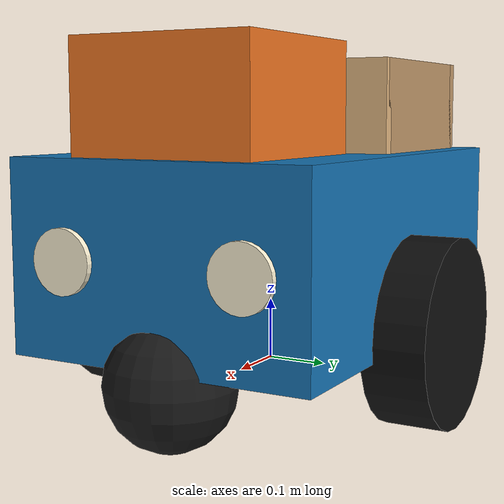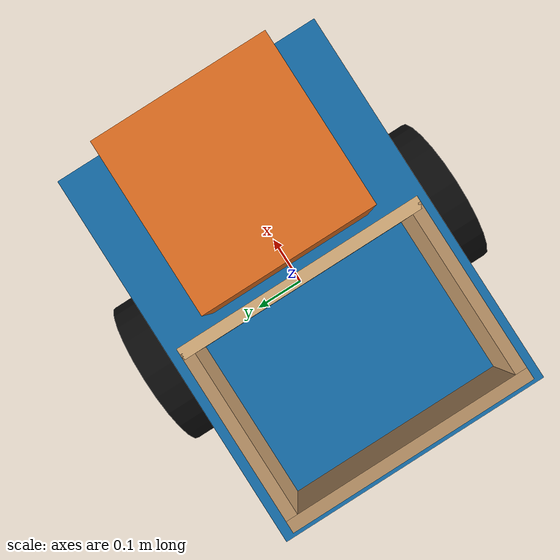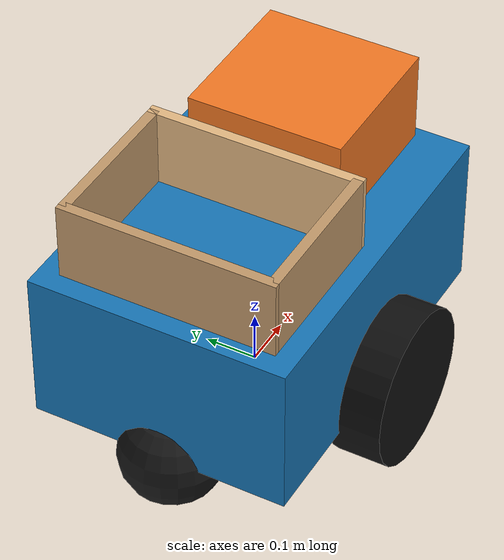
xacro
<?xml version="1.0"?>
<robot xmlns:xacro="http://www.ros.org/wiki/xacro">

    <!-- Updated properties to match your robot model -->
    <xacro:property name="base_length" value="0.7"/>
    <xacro:property name="base_width"  value="0.5"/>
    <xacro:property name="base_height" value="0.3"/>
    <xacro:property name="wheel_radius" value="0.15"/>
    <xacro:property name="wheel_length" value="0.1"/>

    <!-- Base Footprint (empty)   -->
    <link name="base_footprint"/>

    <!-- Fixed transform to base_link (body_link in your model) -->
    <joint name="base_joint" type="fixed">
        <parent link="base_footprint"/>
        <child link="base_link"/>
        <origin xyz="0 0 0.2"/>
    </joint>

    <!-- Base link body  -->
    <link name="base_link">
        <visual>
            <geometry>
                <box size="${base_length} ${base_width} ${base_height}"/>
            </geometry>
            <origin xyz="0 0 0"/>
            <material name="body_blue">
                <color rgba="0.09 0.46 0.71 1.0"/>
            </material>
        </visual>
        <collision>
            <geometry>
                <box size="${base_length} ${base_width} ${base_height}"/>
            </geometry>
            <origin xyz="0 0 0"/>
        </collision>
        <xacro:box_inertia m="5.0" x="${base_length}" y="${base_width}" z="${base_height}"
                   o_xyz="0 0 0" o_rpy="0 0 0"/>
    </link>

    <!-- Front box -->
    <joint name="front_box_joint" type="fixed">
        <parent link="base_link"/>
        <child link="front_box_link"/>
        <origin xyz="0.18 0 0.20" rpy="0 0 0"/>
    </joint>
    <link name="front_box_link">
        <visual>
            <origin xyz="0 0 0" rpy="0 0 0"/>
            <geometry>
                <box size="0.3 0.3 0.25"/>
            </geometry>
            <material name="accent_orange">
                <color rgba="0.95 0.47 0.14 1.0"/>
            </material>
        </visual>
        <collision>
            <origin xyz="0 0 0" rpy="0 0 0"/>
            <geometry>
                <box size="0.4 0.4 0.3"/>
            </geometry>
        </collision>
        <xacro:box_inertia m="1.0" x="0.4" y="0.4" z="0.3"
                   o_xyz="0 0 0" o_rpy="0 0 0"/>
    </link>

    <!-- Basket walls -->
    <joint name="basket_back_joint" type="fixed">
        <parent link="base_link"/>
        <child link="basket_back_link"/>
        <origin xyz="-0.3 0 0.2" rpy="0 0 0"/>
    </joint>
    <link name="basket_back_link">
        <visual>
            <origin xyz="0 0 0" rpy="0 0 0"/>
            <geometry>
                <box size="0.02 0.42 0.2"/>
            </geometry>
            <material name="wood_brown">
                <color rgba="0.76 0.60 0.42 1.0"/>
            </material>
        </visual>
    </link>

    <joint name="basket_left_joint" type="fixed">
        <parent link="base_link"/>
        <child link="basket_left_link"/>
        <origin xyz="-0.15 0.2 0.2" rpy="0 0 0"/>
    </joint>
    <link name="basket_left_link">
        <visual>
            <origin xyz="0 0 0" rpy="0 0 0"/>
            <geometry>
                <box size="0.3 0.02 0.2"/>
            </geometry>
            <material name="wood_brown">
                <color rgba="0.76 0.60 0.42 1.0"/>
            </material>
        </visual>
    </link>

    <joint name="basket_right_joint" type="fixed">
        <parent link="base_link"/>
        <child link="basket_right_link"/>
        <origin xyz="-0.15 -0.2 0.2" rpy="0 0 0"/>
    </joint>
    <link name="basket_right_link">
        <visual>
            <origin xyz="0 0 0" rpy="0 0 0"/>
            <geometry>
                <box size="0.3 0.02 0.2"/>
            </geometry>
            <material name="wood_brown">
                <color rgba="0.76 0.60 0.42 1.0"/>
            </material>
        </visual>
    </link>

    <joint name="basket_front_joint" type="fixed">
        <parent link="base_link"/>
        <child link="basket_front_link"/>
        <origin xyz="0 0 0.2" rpy="0 0 0"/>
    </joint>
    <link name="basket_front_link">
        <visual>
            <origin xyz="0 0 0" rpy="0 0 0"/>
            <geometry>
                <box size="0.02 0.42 0.2"/>
            </geometry>
            <material name="light_brown">
                <color rgba="0.89 0.722 0.51 1"/>
            </material>
        </visual>
    </link>

    <!-- Headlights -->
    <joint name="light1_joint" type="fixed">
        <parent link="base_link"/>
        <child link="light1_link"/>
        <origin xyz="${(base_length + 0.01) / 2.0} -0.15 0" rpy="0 -1.5708 0"/>
    </joint>
    <link name="light1_link">
        <visual>
            <origin xyz="0 0 0" rpy="0 0 0"/>
            <geometry>
                <cylinder length="0.01" radius="0.05"/>
            </geometry>
            <material name="headlight_warm">
                <color rgba="1.00 0.96 0.84 1.0"/>
            </material>
        </visual>
    </link>

    <joint name="light2_joint" type="fixed">
        <parent link="base_link"/>
        <child link="light2_link"/>
        <origin xyz="${(base_length + 0.01) / 2.0} 0.15 0" rpy="0 -1.5708 0"/>
    </joint>
    <link name="light2_link">
        <visual>
            <origin xyz="0 0 0" rpy="0 0 0"/>
            <geometry>
                <cylinder length="0.01" radius="0.05"/>
            </geometry>
            <material name="headlight_warm">
                <color rgba="1.00 0.96 0.84 1.0"/>
            </material>
        </visual>
    </link>

    <!-- Rear Wheels (Driven)        -->
    <xacro:macro name="rear_wheel_link" params="prefix">
        <link name="${prefix}_wheel_link">
            <visual>
                <geometry>
                    <cylinder radius="${wheel_radius}" length="${wheel_length}"/>
                </geometry>
                <origin xyz="0 0 0" rpy="${pi/2} 0 0"/>
                <material name="rubber_black">
                    <color rgba="0.06 0.06 0.06 1.0"/>
                </material>
            </visual>
            <collision>
                <geometry>
                    <sphere radius="${wheel_radius}"/>
                </geometry>
                <origin xyz="0 0 0" rpy="${pi/2} 0 0"/>
            </collision>
            <xacro:cylinder_inertia m="1.0" r="${wheel_radius}" l="${wheel_length}"
                                    o_xyz="0 0 0" o_rpy="${pi/2.0} 0 0"/>
        </link>
    </xacro:macro>

    <xacro:rear_wheel_link prefix="rear_left"/>
    <xacro:rear_wheel_link prefix="rear_right"/>

    <joint name="rear_left_wheel_joint" type="continuous">
        <parent link="base_link"/>
        <child link="rear_left_wheel_link"/>
        <origin xyz="0 ${(base_width/2.0) + 0.03} -0.125" rpy="0 0 0"/>
        <axis xyz="0 1 0"/>
    </joint>

    <joint name="rear_right_wheel_joint" type="continuous">
        <parent link="base_link"/>
        <child link="rear_right_wheel_link"/>
        <origin xyz="0 ${-(base_width/2.0) - 0.03} -0.125" rpy="0 0 0"/>
        <axis xyz="0 1 0"/>
    </joint>

    <!-- Caster Wheels                -->

    <joint name="front_caster_joint" type="fixed">
        <parent link="base_link"/>
        <child link="front_caster_link"/>
        <origin xyz="0.3 0 -0.175" rpy="0 0 0"/>
    </joint>

    <link name="front_caster_link">
        <visual>
            <geometry><sphere radius="${wheel_radius/1.5}"/></geometry>
            <material name="rubber_black"><color rgba="0.1 0.1 0.1 1"/></material>
        </visual>
        <collision>
            <geometry>
            <sphere radius="${wheel_radius/1.5}"/>
            </geometry>
        </collision>
        <xacro:sphere_inertia m="0.5" r="${wheel_radius/1.5}" o_xyz="0 0 0" o_rpy="0 0 0"/>
    </link>

    <joint name="rear_caster_joint" type="fixed">
        <parent link="base_link"/>
        <child link="rear_caster_link"/>
        <origin xyz="-0.3 0 -0.175" rpy="0 0 0"/>
    </joint>

    <link name="rear_caster_link">
        <visual>
            <geometry><sphere radius="${wheel_radius/1.5}"/></geometry>
            <material name="rubber_black"><color rgba="0.1 0.1 0.1 1"/></material>
        </visual>
        <collision>
            <geometry><sphere radius="${wheel_radius/1.5}"/></geometry>
        </collision>
        <xacro:sphere_inertia m="0.5" r="${wheel_radius/1.5}" o_xyz="0 0 0" o_rpy="0 0 0"/>
    </link>

</robot>
